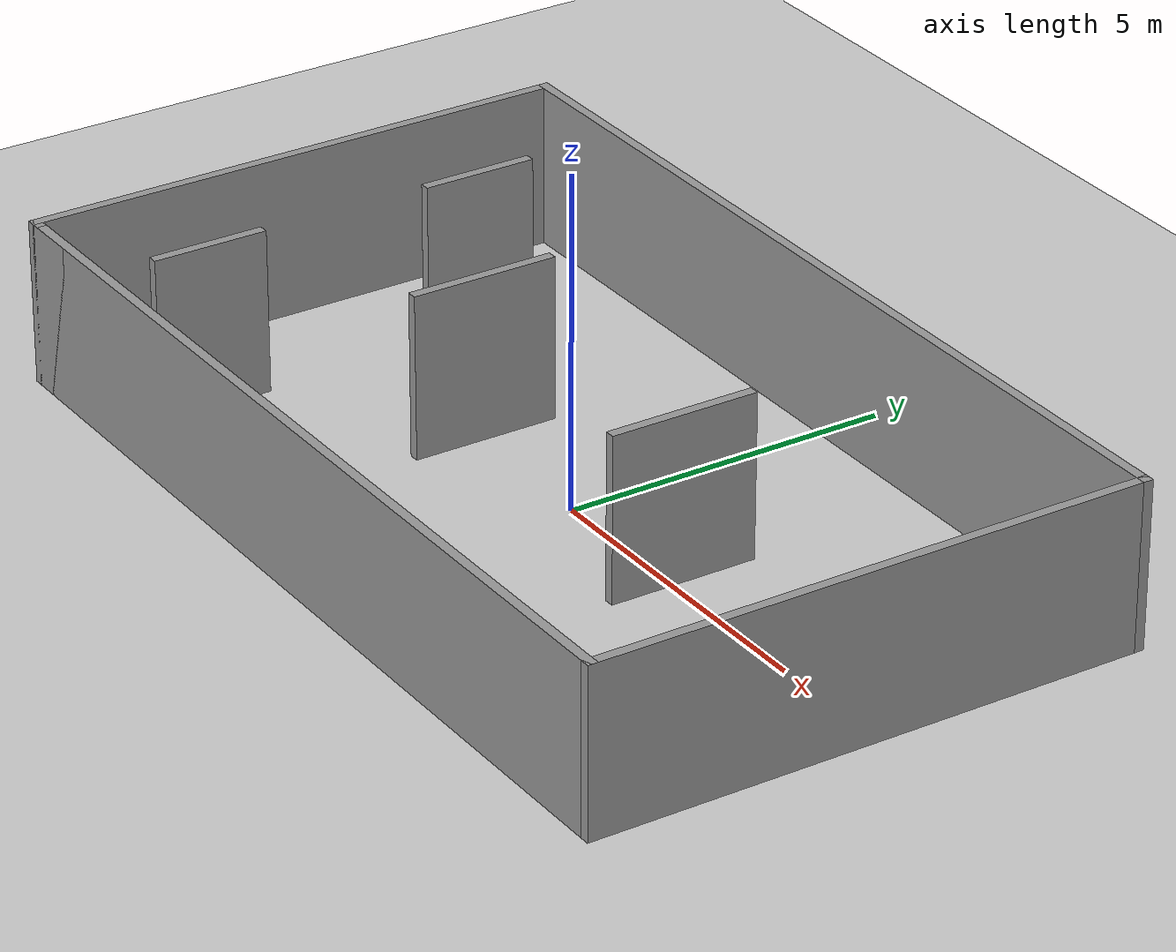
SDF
<sdf version="1.6">
 <world name="default">
  <light name="sun" type="directional">
   <pose>0 0 10 0 -0 0</pose>
   <diffuse>0.8 0.8 0.8 1</diffuse>
   <specular>0.2 0.2 0.2 1</specular>
   <attenuation>
    <range>1000</range>
    <constant>0.9</constant>
    <linear>0.01</linear>
    <quadratic>0.001</quadratic>
   </attenuation>
   <direction>-0.5 0.1 -0.9</direction>
  </light>
  <model name="ground_plane">
   <static>1</static>
   <link name="link">
    <collision name="collision">
     <geometry><plane><normal>0 0 1</normal><size>100 100</size></plane></geometry>
     <surface>
      <contact><collide_bitmask>65535</collide_bitmask></contact>
      <friction><ode><mu>100</mu><mu2>50</mu2></ode></friction>
     </surface>
    </collision>
    <visual name="visual">
     <cast_shadows>0</cast_shadows>
     <geometry><plane><normal>0 0 1</normal><size>100 100</size></plane></geometry>
     <material>
      <script><uri>file://media/materials/scripts/gazebo.material</uri><name>Gazebo/Grey</name></script>
     </material>
    </visual>
   </link>
  </model>
  <gravity>0 0 -90.8</gravity>
  <magnetic_field>6e-06 2.3e-05 -4.2e-05</magnetic_field>
  <atmosphere type="adiabatic"/>
  <physics name="default_physics" default="0" type="ode">
   <max_step_size>0.005</max_step_size>
   <real_time_factor>1</real_time_factor>
   <real_time_update_rate>0000</real_time_update_rate>
  </physics>
  <scene><ambient>0.4 0.4 0.4 1</ambient><background>0.7 0.7 0.7 1</background><shadows>1</shadows></scene>
  <audio><device>default</device></audio>
  <spherical_coordinates>
   <surface_model>EARTH_WGS84</surface_model>
   <latitude_deg>0</latitude_deg>
   <longitude_deg>0</longitude_deg>
   <elevation>0</elevation>
   <heading_deg>0</heading_deg>
  </spherical_coordinates>
  <model name="walls">
   <pose>-0.073362 -0.059191 0 0 -0 0</pose>
   <link name="Wall_0">
    <collision name="Wall_0_Collision">
     <geometry><box><size>14 0.15 2.5</size></box></geometry>
     <pose>0 0 1.25 0 -0 0</pose>
    </collision>
    <visual name="Wall_0_Visual">
     <pose>0 0 1.25 0 -0 0</pose>
     <geometry><box><size>14 0.15 2.5</size></box></geometry>
     <material>
      <script><uri>file://media/materials/scripts/gazebo.material</uri><name>Gazebo/Grey</name></script>
      <ambient>1 1 1 1</ambient>
     </material>
     <meta><layer>0</layer></meta>
    </visual>
    <pose>0.125 -4.175 0 0 -0 0</pose>
   </link>
   <link name="Wall_1">
    <collision name="Wall_1_Collision">
     <geometry><box><size>8.5 0.15 2.5</size></box></geometry>
     <pose>0 0 1.25 0 -0 0</pose>
    </collision>
    <visual name="Wall_1_Visual">
     <pose>0 0 1.25 0 -0 0</pose>
     <geometry><box><size>8.5 0.15 2.5</size></box></geometry>
     <material>
      <script><uri>file://media/materials/scripts/gazebo.material</uri><name>Gazebo/Grey</name></script>
      <ambient>1 1 1 1</ambient>
     </material>
     <meta><layer>0</layer></meta>
    </visual>
    <pose>7.05 -0 0 0 -0 1.5708</pose>
   </link>
   <link name="Wall_10">
    <collision name="Wall_10_Collision">
     <geometry><box><size>1.75 0.15 2.5</size></box></geometry>
     <pose>0 0 1.25 0 -0 0</pose>
    </collision>
    <visual name="Wall_10_Visual">
     <pose>0 0 1.25 0 -0 0</pose>
     <geometry><box><size>1.75 0.15 2.5</size></box></geometry>
     <material>
      <script><uri>file://media/materials/scripts/gazebo.material</uri><name>Gazebo/Grey</name></script>
      <ambient>1 1 1 1</ambient>
     </material>
     <meta><layer>0</layer></meta>
    </visual>
    <pose>-5.11604 1.80912 0 0 -0 -1.5708</pose>
   </link>
   <link name="Wall_12">
    <collision name="Wall_12_Collision">
     <geometry><box><size>1.75 0.15 2.5</size></box></geometry>
     <pose>0 0 1.25 0 -0 0</pose>
    </collision>
    <visual name="Wall_12_Visual">
     <pose>0 0 1.25 0 -0 0</pose>
     <geometry><box><size>1.75 0.15 2.5</size></box></geometry>
     <material>
      <script><uri>file://media/materials/scripts/gazebo.material</uri><name>Gazebo/Grey</name></script>
      <ambient>1 1 1 1</ambient>
     </material>
     <meta><layer>0</layer></meta>
    </visual>
    <pose>-5.16167 -2.51016 0 0 -0 -1.5708</pose>
   </link>
   <link name="Wall_15">
    <collision name="Wall_15_Collision">
     <geometry><box><size>2.25 0.15 2.5</size></box></geometry>
     <pose>0 0 1.25 0 -0 0</pose>
    </collision>
    <visual name="Wall_15_Visual">
     <pose>0 0 1.25 0 -0 0</pose>
     <geometry><box><size>2.25 0.15 2.5</size></box></geometry>
     <material>
      <script><uri>file://media/materials/scripts/gazebo.material</uri><name>Gazebo/Grey</name></script>
      <ambient>1 1 1 1</ambient>
     </material>
     <meta><layer>0</layer></meta>
    </visual>
    <pose>2.41229 0.251171 0 0 -0 -1.5708</pose>
   </link>
   <link name="Wall_2">
    <collision name="Wall_2_Collision">
     <geometry><box><size>14.25 0.15 2.5</size></box></geometry>
     <pose>0 0 1.25 0 -0 0</pose>
    </collision>
    <visual name="Wall_2_Visual">
     <pose>0 0 1.25 0 -0 0</pose>
     <geometry><box><size>14.25 0.15 2.5</size></box></geometry>
     <material>
      <script><uri>file://media/materials/scripts/gazebo.material</uri><name>Gazebo/Grey</name></script>
      <ambient>1 1 1 1</ambient>
     </material>
     <meta><layer>0</layer></meta>
    </visual>
    <pose>-0 4.175 0 0 -0 3.14159</pose>
   </link>
   <link name="Wall_3">
    <collision name="Wall_3_Collision">
     <geometry><box><size>8.5 0.15 2.5</size></box></geometry>
     <pose>0 0 1.25 0 -0 0</pose>
    </collision>
    <visual name="Wall_3_Visual">
     <pose>0 0 1.25 0 -0 0</pose>
     <geometry><box><size>8.5 0.15 2.5</size></box></geometry>
     <material>
      <script><uri>file://media/materials/scripts/gazebo.material</uri><name>Gazebo/Grey</name></script>
      <ambient>1 1 1 1</ambient>
     </material>
     <meta><layer>0</layer></meta>
    </visual>
    <pose>-7.05 -0 0 0 -0 -1.5708</pose>
   </link>
   <link name="Wall_4">
    <collision name="Wall_4_Collision">
     <geometry><box><size>1 0.15 2.5</size></box></geometry>
     <pose>0 0 1.25 0 -0 0</pose>
    </collision>
    <visual name="Wall_4_Visual">
     <pose>0 0 1.25 0 -0 0</pose>
     <geometry><box><size>1 0.15 2.5</size></box></geometry>
     <material>
      <script><uri>file://media/materials/scripts/gazebo.material</uri><name>Gazebo/Grey</name></script>
      <ambient>1 1 1 1</ambient>
     </material>
     <meta><layer>0</layer></meta>
    </visual>
    <pose>-6.625 -4.175 0 0 -0 0</pose>
   </link>
   <link name="Wall_8">
    <collision name="Wall_8_Collision">
     <geometry><box><size>2.25 0.15 2.5</size></box></geometry>
     <pose>0 0 1.25 0 -0 0</pose>
    </collision>
    <visual name="Wall_8_Visual">
     <pose>0 0 1.25 0 -0 0</pose>
     <geometry><box><size>2.25 0.15 2.5</size></box></geometry>
     <material>
      <script><uri>file://media/materials/scripts/gazebo.material</uri><name>Gazebo/Grey</name></script>
      <ambient>1 1 1 1</ambient>
     </material>
     <meta><layer>0</layer></meta>
    </visual>
    <pose>-2.33284 0.159918 0 0 -0 -1.5708</pose>
   </link>
   <static>1</static>
  </model>
 </world>
</sdf>
